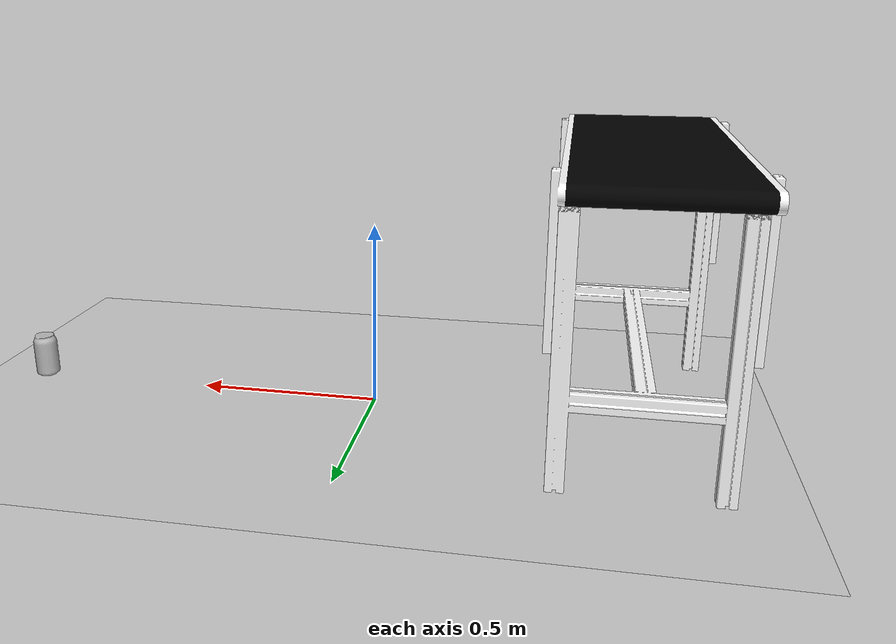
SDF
<sdf version="1.7">
 <world name="default">
  <model name="ground_plane">
   <static>1</static>
   <link name="link">
    <collision name="collision">
     <geometry><plane><normal>0 0 1</normal><size>100 100</size></plane></geometry>
     <surface><friction><ode><mu>100</mu><mu2>50</mu2></ode></friction></surface>
    </collision>
    <visual name="visual">
     <cast_shadows>0</cast_shadows>
     <geometry><plane><normal>0 0 1</normal><size>100 100</size></plane></geometry>
     <material>
      <script><uri>file://media/materials/scripts/gazebo.material</uri><name>Gazebo/Grey</name></script>
     </material>
    </visual>
   </link>
  </model>
  <light name="sun" type="directional">
   <pose>0 0 10 0 -0 0</pose>
   <diffuse>0.8 0.8 0.8 1</diffuse>
   <specular>0.2 0.2 0.2 1</specular>
   <attenuation>
    <range>1000</range>
    <constant>0.9</constant>
    <linear>0.01</linear>
    <quadratic>0.001</quadratic>
   </attenuation>
   <direction>-0.5 0.1 -0.9</direction>
   <spot><inner_angle>0</inner_angle><outer_angle>0</outer_angle><falloff>0</falloff></spot>
  </light>
  <scene><shadows>0</shadows><ambient>0.4 0.4 0.4 1</ambient><background>0.7 0.7 0.7 1</background></scene>
  <physics type="ode">
   <real_time_update_rate>1000</real_time_update_rate>
   <max_step_size>0.001</max_step_size>
   <real_time_factor>1</real_time_factor>
   <ode>
    <solver>
     <type>quick</type>
     <iters>150</iters>
     <precon_iters>0</precon_iters>
     <sor>1.4</sor>
     <use_dynamic_moi_rescaling>1</use_dynamic_moi_rescaling>
    </solver>
    <constraints>
     <cfm>1e-05</cfm>
     <erp>0.2</erp>
     <contact_max_correcting_vel>2000</contact_max_correcting_vel>
     <contact_surface_layer>0.01</contact_surface_layer>
    </constraints>
   </ode>
  </physics>
  <gravity>0 0 -9.8</gravity>
  <magnetic_field>6e-06 2.3e-05 -4.2e-05</magnetic_field>
  <atmosphere type="adiabatic"/>
  <spherical_coordinates>
   <surface_model>EARTH_WGS84</surface_model>
   <latitude_deg>0</latitude_deg>
   <longitude_deg>0</longitude_deg>
   <elevation>0</elevation>
   <heading_deg>0</heading_deg>
  </spherical_coordinates>
  <model name="coke_can">
   <link name="link">
    <inertial>
     <pose>0 0 0.06 0 -0 0</pose>
     <mass>0.025</mass>
     <inertia>
      <ixx>0.00055575</ixx>
      <ixy>0</ixy>
      <ixz>0</ixz>
      <iyy>0.00055575</iyy>
      <iyz>0</iyz>
      <izz>0.0001755</izz>
     </inertia>
    </inertial>
    <collision name="collision">
     <pose>0.003937 0.004724 -0.18 0 -0 0</pose>
     <geometry><mesh><uri>model://coke_can/meshes/coke_can.dae</uri></mesh></geometry>
     <surface>
      <friction><ode><mu>1</mu><mu2>1</mu2></ode></friction>
      <contact><ode><kp>1e+07</kp><kd>1</kd><min_depth>0.001</min_depth><max_vel>0.1</max_vel></ode></contact>
     </surface>
    </collision>
    <visual name="visual">
     <pose>0.003937 0.004724 -0.18 0 -0 0</pose>
     <geometry><mesh><uri>model://coke_can/meshes/coke_can.dae</uri></mesh></geometry>
    </visual>
   </link>
   <pose>0.999998 5.3e-05 -0.003441 -0.037592 0.006468 0.000151</pose>
  </model>
  <model name="conveyor_belt">
   <model name="conveyorbelt_fixed">
    <static>1</static>
    <link name="belt_visual">
     <visual name="visual">
      <geometry>
       <mesh><scale>1 1 1</scale><uri>model://conveyor_belt/meshes/conveyor_belt.dae</uri></mesh>
      </geometry>
     </visual>
     <collision name="collision">
      <geometry>
       <mesh><scale>1 1 1</scale><uri>model://conveyor_belt/meshes/conveyor_belt.dae</uri></mesh>
      </geometry>
      <origin xyz="0.0 0.0 0" rpy="0.0 0.0 0.0"/>
     </collision>
    </link>
   </model>
   <model name="conveyorbelt_moving">
    <allow_auto_disable>0</allow_auto_disable>
    <static>0</static>
    <pose>0 0 0.741 0 -0 0</pose>
    <link name="belt_moving">
     <inertial>
      <mass>100</mass>
      <inertia><ixx>0</ixx><ixy>0</ixy><ixz>0</ixz><iyy>0</iyy><iyz>0</iyz><izz>0</izz></inertia>
     </inertial>
     <collision name="belt_collision">
      <geometry><box><size>0.425 1.2 1e-05</size></box></geometry>
      <surface>
       <friction>
        <ode><mu>100</mu><mu2>100</mu2></ode>
        <torsional><coefficient>1000</coefficient><patch_radius>0.1</patch_radius></torsional>
       </friction>
      </surface>
     </collision>
    </link>
   </model>
   <joint name="belt_joint" type="prismatic">
    <parent>conveyorbelt_fixed::belt_visual</parent>
    <child>conveyorbelt_moving::belt_moving</child>
    <axis>
     <xyz expressed_in="__model__">0 1 0</xyz>
     <limit><lower>0</lower><upper>0.01</upper></limit>
     <dynamics><spring_reference>0</spring_reference><spring_stiffness>0</spring_stiffness></dynamics>
    </axis>
   </joint>
   <plugin name="ros2_conveyorbelt_plugin" filename="libros2_conveyorbelt_plugin.so">
    <max_velocity>1.0</max_velocity>
    <publish_rate>1000</publish_rate>
   </plugin>
   <pose>-0.7 0 0 0 -0 0</pose>
  </model>
 </world>
</sdf>
